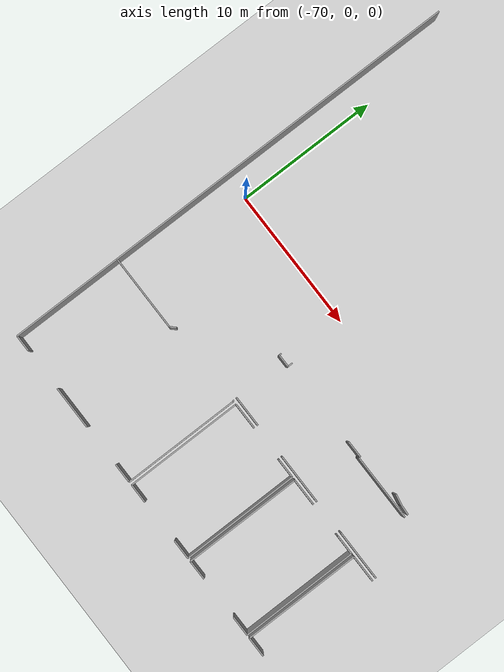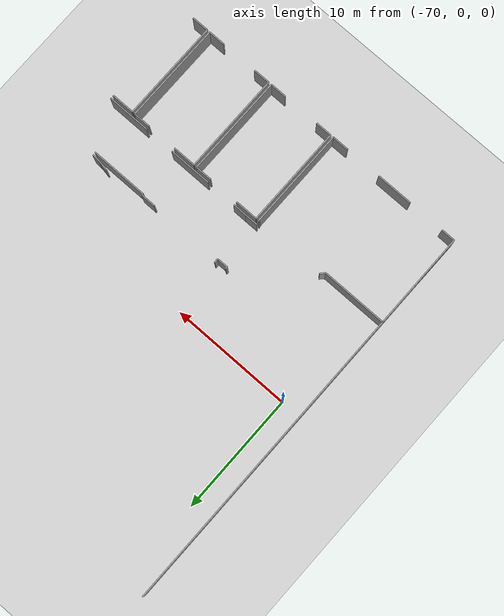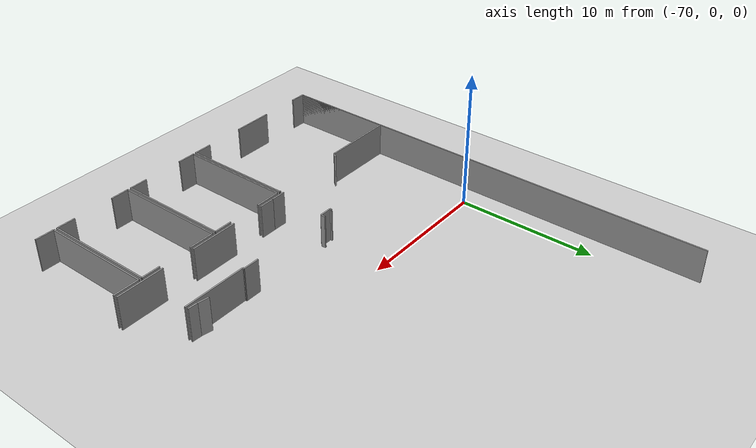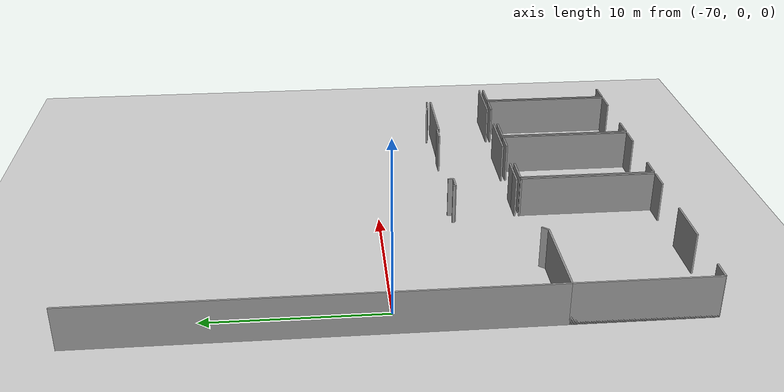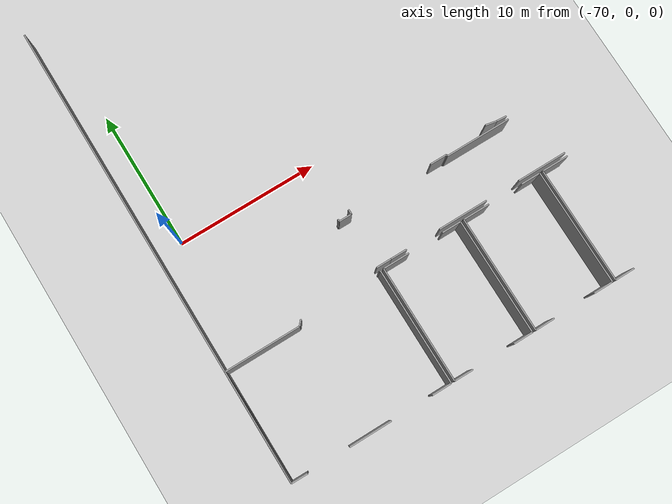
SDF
<sdf version="1.6">
 <world name="default">
  <model name="ground_plane">
   <static>1</static>
   <link name="link">
    <collision name="collision">
     <geometry><plane><normal>0 0 1</normal><size>100 100</size></plane></geometry>
     <surface><friction><ode><mu>100</mu><mu2>50</mu2></ode></friction></surface>
    </collision>
    <visual name="visual">
     <cast_shadows>0</cast_shadows>
     <geometry><plane><normal>0 0 1</normal><size>100 100</size></plane></geometry>
     <material>
      <script><uri>file://media/materials/scripts/gazebo.material</uri><name>Gazebo/Grey</name></script>
     </material>
    </visual>
   </link>
  </model>
  <model name="50041185">
   <static>1</static>
   <link name="Wall_0">
    <collision name="Wall_0_Collision">
     <geometry><box><size>7.89638912543 0.1 2.5</size></box></geometry>
     <pose>3.94819456272 0 1.25 0 0 0</pose>
    </collision>
    <visual name="Wall_0_Visual">
     <pose>3.94819456272 0 1.25 0 0 0</pose>
     <geometry><box><size>7.89638912543 0.1 2.5</size></box></geometry>
     <material>
      <script><uri>file://media/materials/scripts/gazebo.material</uri><name>Gazebo/Grey</name></script>
      <ambient>1 1 1 1</ambient>
     </material>
    </visual>
    <pose>0.0 -33.5813876638 0 0 0 1.57079632679</pose>
   </link>
   <link name="Wall_1">
    <collision name="Wall_1_Collision">
     <geometry><box><size>5.39817486242 0.1 2.5</size></box></geometry>
     <pose>2.69908743121 0 1.25 0 0 0</pose>
    </collision>
    <visual name="Wall_1_Visual">
     <pose>2.69908743121 0 1.25 0 0 0</pose>
     <geometry><box><size>5.39817486242 0.1 2.5</size></box></geometry>
     <material>
      <script><uri>file://media/materials/scripts/gazebo.material</uri><name>Gazebo/Grey</name></script>
      <ambient>1 1 1 1</ambient>
     </material>
    </visual>
    <pose>0.0 -25.6849985384 0 0 0 0.0</pose>
   </link>
   <link name="Wall_2">
    <collision name="Wall_2_Collision">
     <geometry><box><size>0.445846377394 0.1 2.5</size></box></geometry>
     <pose>0.222923188697 0 1.25 0 0 0</pose>
    </collision>
    <visual name="Wall_2_Visual">
     <pose>0.222923188697 0 1.25 0 0 0</pose>
     <geometry><box><size>0.445846377394 0.1 2.5</size></box></geometry>
     <material>
      <script><uri>file://media/materials/scripts/gazebo.material</uri><name>Gazebo/Grey</name></script>
      <ambient>1 1 1 1</ambient>
     </material>
    </visual>
    <pose>5.39817486242 -25.6849985384 0 0 0 0.848533692958</pose>
   </link>
   <link name="Wall_3">
    <collision name="Wall_3_Collision">
     <geometry><box><size>0.0874439176909 0.1 2.5</size></box></geometry>
     <pose>0.0437219588454 0 1.25 0 0 0</pose>
    </collision>
    <visual name="Wall_3_Visual">
     <pose>0.0437219588454 0 1.25 0 0 0</pose>
     <geometry><box><size>0.0874439176909 0.1 2.5</size></box></geometry>
     <material>
      <script><uri>file://media/materials/scripts/gazebo.material</uri><name>Gazebo/Grey</name></script>
      <ambient>1 1 1 1</ambient>
     </material>
    </visual>
    <pose>11.4509970894 -25.3504747137 0 0 0 0.0</pose>
   </link>
   <link name="Wall_4">
    <collision name="Wall_4_Collision">
     <geometry><box><size>8.24171634108 0.1 2.5</size></box></geometry>
     <pose>4.12085817054 0 1.25 0 0 0</pose>
    </collision>
    <visual name="Wall_4_Visual">
     <pose>4.12085817054 0 1.25 0 0 0</pose>
     <geometry><box><size>8.24171634108 0.1 2.5</size></box></geometry>
     <material>
      <script><uri>file://media/materials/scripts/gazebo.material</uri><name>Gazebo/Grey</name></script>
      <ambient>1 1 1 1</ambient>
     </material>
    </visual>
    <pose>11.5384410071 -25.3504747137 0 0 0 -1.57079632679</pose>
   </link>
   <link name="Wall_5">
    <collision name="Wall_5_Collision">
     <geometry><box><size>1.38995157539 0.1 2.5</size></box></geometry>
     <pose>0.694975787694 0 1.25 0 0 0</pose>
    </collision>
    <visual name="Wall_5_Visual">
     <pose>0.694975787694 0 1.25 0 0 0</pose>
     <geometry><box><size>1.38995157539 0.1 2.5</size></box></geometry>
     <material>
      <script><uri>file://media/materials/scripts/gazebo.material</uri><name>Gazebo/Grey</name></script>
      <ambient>1 1 1 1</ambient>
     </material>
    </visual>
    <pose>11.5384410071 -33.5921910548 0 0 0 3.14159265359</pose>
   </link>
   <link name="Wall_6">
    <collision name="Wall_6_Collision">
     <geometry><box><size>3.01897583853 0.1 2.5</size></box></geometry>
     <pose>1.50948791927 0 1.25 0 0 0</pose>
    </collision>
    <visual name="Wall_6_Visual">
     <pose>1.50948791927 0 1.25 0 0 0</pose>
     <geometry><box><size>3.01897583853 0.1 2.5</size></box></geometry>
     <material>
      <script><uri>file://media/materials/scripts/gazebo.material</uri><name>Gazebo/Grey</name></script>
      <ambient>1 1 1 1</ambient>
     </material>
    </visual>
    <pose>7.1771756123 -33.5921910548 0 0 0 3.14159265359</pose>
   </link>
   <link name="Wall_7">
    <collision name="Wall_7_Collision">
     <geometry><box><size>1.15734779669 0.1 2.5</size></box></geometry>
     <pose>0.578673898346 0 1.25 0 0 0</pose>
    </collision>
    <visual name="Wall_7_Visual">
     <pose>0.578673898346 0 1.25 0 0 0</pose>
     <geometry><box><size>1.15734779669 0.1 2.5</size></box></geometry>
     <material>
      <script><uri>file://media/materials/scripts/gazebo.material</uri><name>Gazebo/Grey</name></script>
      <ambient>1 1 1 1</ambient>
     </material>
    </visual>
    <pose>1.15729737287 -33.5921910548 0 0 0 3.13225790744</pose>
   </link>
   <link name="Wall_8">
    <collision name="Wall_8_Collision">
     <geometry><box><size>8.22290573088 0.1 2.5</size></box></geometry>
     <pose>4.11145286544 0 1.25 0 0 0</pose>
    </collision>
    <visual name="Wall_8_Visual">
     <pose>4.11145286544 0 1.25 0 0 0</pose>
     <geometry><box><size>8.22290573088 0.1 2.5</size></box></geometry>
     <material>
      <script><uri>file://media/materials/scripts/gazebo.material</uri><name>Gazebo/Grey</name></script>
      <ambient>1 1 1 1</ambient>
     </material>
    </visual>
    <pose>11.7827247423 -33.578591492 0 0 0 1.57079632679</pose>
   </link>
   <link name="Wall_9">
    <collision name="Wall_9_Collision">
     <geometry><box><size>1.87279960345 0.1 2.5</size></box></geometry>
     <pose>0.936399801726 0 1.25 0 0 0</pose>
    </collision>
    <visual name="Wall_9_Visual">
     <pose>0.936399801726 0 1.25 0 0 0</pose>
     <geometry><box><size>1.87279960345 0.1 2.5</size></box></geometry>
     <material>
      <script><uri>file://media/materials/scripts/gazebo.material</uri><name>Gazebo/Grey</name></script>
      <ambient>1 1 1 1</ambient>
     </material>
    </visual>
    <pose>11.7827247423 -25.3556857611 0 0 0 0.0</pose>
   </link>
   <link name="Wall_10">
    <collision name="Wall_10_Collision">
     <geometry><box><size>1.36859899084 0.1 2.5</size></box></geometry>
     <pose>0.684299495418 0 1.25 0 0 0</pose>
    </collision>
    <visual name="Wall_10_Visual">
     <pose>0.684299495418 0 1.25 0 0 0</pose>
     <geometry><box><size>1.36859899084 0.1 2.5</size></box></geometry>
     <material>
      <script><uri>file://media/materials/scripts/gazebo.material</uri><name>Gazebo/Grey</name></script>
      <ambient>1 1 1 1</ambient>
     </material>
    </visual>
    <pose>16.1635633396 -25.3556857611 0 0 0 0.0</pose>
   </link>
   <link name="Wall_11">
    <collision name="Wall_11_Collision">
     <geometry><box><size>8.22900646932 0.1 2.5</size></box></geometry>
     <pose>4.11450323466 0 1.25 0 0 0</pose>
    </collision>
    <visual name="Wall_11_Visual">
     <pose>4.11450323466 0 1.25 0 0 0</pose>
     <geometry><box><size>8.22900646932 0.1 2.5</size></box></geometry>
     <material>
      <script><uri>file://media/materials/scripts/gazebo.material</uri><name>Gazebo/Grey</name></script>
      <ambient>1 1 1 1</ambient>
     </material>
    </visual>
    <pose>17.5321623305 -25.3556857611 0 0 0 -1.57079632679</pose>
   </link>
   <link name="Wall_12">
    <collision name="Wall_12_Collision">
     <geometry><box><size>1.36859899084 0.1 2.5</size></box></geometry>
     <pose>0.684299495418 0 1.25 0 0 0</pose>
    </collision>
    <visual name="Wall_12_Visual">
     <pose>0.684299495418 0 1.25 0 0 0</pose>
     <geometry><box><size>1.36859899084 0.1 2.5</size></box></geometry>
     <material>
      <script><uri>file://media/materials/scripts/gazebo.material</uri><name>Gazebo/Grey</name></script>
      <ambient>1 1 1 1</ambient>
     </material>
    </visual>
    <pose>17.5321623305 -33.5846922305 0 0 0 3.14159265359</pose>
   </link>
   <link name="Wall_13">
    <collision name="Wall_13_Collision">
     <geometry><box><size>1.35043765464 0.1 2.5</size></box></geometry>
     <pose>0.675218827322 0 1.25 0 0 0</pose>
    </collision>
    <visual name="Wall_13_Visual">
     <pose>0.675218827322 0 1.25 0 0 0</pose>
     <geometry><box><size>1.35043765464 0.1 2.5</size></box></geometry>
     <material>
      <script><uri>file://media/materials/scripts/gazebo.material</uri><name>Gazebo/Grey</name></script>
      <ambient>1 1 1 1</ambient>
     </material>
    </visual>
    <pose>13.1331486165 -33.5846922305 0 0 0 3.13707503726</pose>
   </link>
   <link name="Wall_14">
    <collision name="Wall_14_Collision">
     <geometry><box><size>8.23116714752 0.1 2.5</size></box></geometry>
     <pose>4.11558357376 0 1.25 0 0 0</pose>
    </collision>
    <visual name="Wall_14_Visual">
     <pose>4.11558357376 0 1.25 0 0 0</pose>
     <geometry><box><size>8.23116714752 0.1 2.5</size></box></geometry>
     <material>
      <script><uri>file://media/materials/scripts/gazebo.material</uri><name>Gazebo/Grey</name></script>
      <ambient>1 1 1 1</ambient>
     </material>
    </visual>
    <pose>17.7816571131 -33.5846922305 0 0 0 1.57079632679</pose>
   </link>
   <link name="Wall_15">
    <collision name="Wall_15_Collision">
     <geometry><box><size>1.89732965594 0.1 2.5</size></box></geometry>
     <pose>0.948664827972 0 1.25 0 0 0</pose>
    </collision>
    <visual name="Wall_15_Visual">
     <pose>0.948664827972 0 1.25 0 0 0</pose>
     <geometry><box><size>1.89732965594 0.1 2.5</size></box></geometry>
     <material>
      <script><uri>file://media/materials/scripts/gazebo.material</uri><name>Gazebo/Grey</name></script>
      <ambient>1 1 1 1</ambient>
     </material>
    </visual>
    <pose>17.7816571131 -25.3535250829 0 0 0 0.0</pose>
   </link>
   <link name="Wall_16">
    <collision name="Wall_16_Collision">
     <geometry><box><size>1.39058706898 0.1 2.5</size></box></geometry>
     <pose>0.695293534488 0 1.25 0 0 0</pose>
    </collision>
    <visual name="Wall_16_Visual">
     <pose>0.695293534488 0 1.25 0 0 0</pose>
     <geometry><box><size>1.39058706898 0.1 2.5</size></box></geometry>
     <material>
      <script><uri>file://media/materials/scripts/gazebo.material</uri><name>Gazebo/Grey</name></script>
      <ambient>1 1 1 1</ambient>
     </material>
    </visual>
    <pose>22.1651647835 -25.3535250829 0 0 0 0.0</pose>
   </link>
   <link name="Wall_17">
    <collision name="Wall_17_Collision">
     <geometry><box><size>8.22163474371 0.1 2.5</size></box></geometry>
     <pose>4.11081737185 0 1.25 0 0 0</pose>
    </collision>
    <visual name="Wall_17_Visual">
     <pose>4.11081737185 0 1.25 0 0 0</pose>
     <geometry><box><size>8.22163474371 0.1 2.5</size></box></geometry>
     <material>
      <script><uri>file://media/materials/scripts/gazebo.material</uri><name>Gazebo/Grey</name></script>
      <ambient>1 1 1 1</ambient>
     </material>
    </visual>
    <pose>23.5557518525 -25.3535250829 0 0 0 -1.57079632679</pose>
   </link>
   <link name="Wall_18">
    <collision name="Wall_18_Collision">
     <geometry><box><size>1.38753669975 0.1 2.5</size></box></geometry>
     <pose>0.693768349877 0 1.25 0 0 0</pose>
    </collision>
    <visual name="Wall_18_Visual">
     <pose>0.693768349877 0 1.25 0 0 0</pose>
     <geometry><box><size>1.38753669975 0.1 2.5</size></box></geometry>
     <material>
      <script><uri>file://media/materials/scripts/gazebo.material</uri><name>Gazebo/Grey</name></script>
      <ambient>1 1 1 1</ambient>
     </material>
    </visual>
    <pose>23.5557518525 -33.5751598266 0 0 0 3.14159265359</pose>
   </link>
   <link name="Wall_19">
    <collision name="Wall_19_Collision">
     <geometry><box><size>1.38210432789 0.1 2.5</size></box></geometry>
     <pose>0.691052163944 0 1.25 0 0 0</pose>
    </collision>
    <visual name="Wall_19_Visual">
     <pose>0.691052163944 0 1.25 0 0 0</pose>
     <geometry><box><size>1.38210432789 0.1 2.5</size></box></geometry>
     <material>
      <script><uri>file://media/materials/scripts/gazebo.material</uri><name>Gazebo/Grey</name></script>
      <ambient>1 1 1 1</ambient>
     </material>
    </visual>
    <pose>19.163728568 -33.5751598266 0 0 0 -3.13469557701</pose>
   </link>
   <link name="Wall_20">
    <collision name="Wall_20_Collision">
     <geometry><box><size>8.23383622059 0.1 2.5</size></box></geometry>
     <pose>4.1169181103 0 1.25 0 0 0</pose>
    </collision>
    <visual name="Wall_20_Visual">
     <pose>4.1169181103 0 1.25 0 0 0</pose>
     <geometry><box><size>8.23383622059 0.1 2.5</size></box></geometry>
     <material>
      <script><uri>file://media/materials/scripts/gazebo.material</uri><name>Gazebo/Grey</name></script>
      <ambient>1 1 1 1</ambient>
     </material>
    </visual>
    <pose>23.7919012697 -33.5831670458 0 0 0 1.57079632679</pose>
   </link>
   <link name="Wall_21">
    <collision name="Wall_21_Collision">
     <geometry><box><size>1.89288120083 0.1 2.5</size></box></geometry>
     <pose>0.946440600414 0 1.25 0 0 0</pose>
    </collision>
    <visual name="Wall_21_Visual">
     <pose>0.946440600414 0 1.25 0 0 0</pose>
     <geometry><box><size>1.89288120083 0.1 2.5</size></box></geometry>
     <material>
      <script><uri>file://media/materials/scripts/gazebo.material</uri><name>Gazebo/Grey</name></script>
      <ambient>1 1 1 1</ambient>
     </material>
    </visual>
    <pose>23.7919012697 -25.3493308253 0 0 0 0.0</pose>
   </link>
   <link name="Wall_25">
    <collision name="Wall_25_Collision">
     <geometry><box><size>1.39758171156 0.1 2.5</size></box></geometry>
     <pose>0.698790855779 0 1.25 0 0 0</pose>
    </collision>
    <visual name="Wall_25_Visual">
     <pose>0.698790855779 0 1.25 0 0 0</pose>
     <geometry><box><size>1.39758171156 0.1 2.5</size></box></geometry>
     <material>
      <script><uri>file://media/materials/scripts/gazebo.material</uri><name>Gazebo/Grey</name></script>
      <ambient>1 1 1 1</ambient>
     </material>
    </visual>
    <pose>25.1894787682 -33.5797353805 0 0 0 -3.13913722018</pose>
   </link>
   <link name="Wall_112">
    <collision name="Wall_112_Collision">
     <geometry><box><size>0.695731518864 0.1 2.5</size></box></geometry>
     <pose>0.347865759432 0 1.25 0 0 0</pose>
    </collision>
    <visual name="Wall_112_Visual">
     <pose>0.347865759432 0 1.25 0 0 0</pose>
     <geometry><box><size>0.695731518864 0.1 2.5</size></box></geometry>
     <material>
      <script><uri>file://media/materials/scripts/gazebo.material</uri><name>Gazebo/Grey</name></script>
      <ambient>1 1 1 1</ambient>
     </material>
    </visual>
    <pose>23.8007981799 -21.0807203955 0 0 0 3.07834197287</pose>
   </link>
   <link name="Wall_113">
    <collision name="Wall_113_Collision">
     <geometry><box><size>0.794429423441 0.1 2.5</size></box></geometry>
     <pose>0.397214711721 0 1.25 0 0 0</pose>
    </collision>
    <visual name="Wall_113_Visual">
     <pose>0.397214711721 0 1.25 0 0 0</pose>
     <geometry><box><size>0.794429423441 0.1 2.5</size></box></geometry>
     <material>
      <script><uri>file://media/materials/scripts/gazebo.material</uri><name>Gazebo/Grey</name></script>
      <ambient>1 1 1 1</ambient>
     </material>
    </visual>
    <pose>23.1064578858 -21.0367442393 0 0 0 2.9490604108</pose>
   </link>
   <link name="Wall_230">
    <collision name="Wall_230_Collision">
     <geometry><box><size>1.076907434 0.1 2.5</size></box></geometry>
     <pose>0.538453717002 0 1.25 0 0 0</pose>
    </collision>
    <visual name="Wall_230_Visual">
     <pose>0.538453717002 0 1.25 0 0 0</pose>
     <geometry><box><size>1.076907434 0.1 2.5</size></box></geometry>
     <material>
      <script><uri>file://media/materials/scripts/gazebo.material</uri><name>Gazebo/Grey</name></script>
      <ambient>1 1 1 1</ambient>
     </material>
    </visual>
    <pose>12.517736626 -25.0736537068 0 0 0 3.14159265359</pose>
   </link>
   <link name="Wall_231">
    <collision name="Wall_231_Collision">
     <geometry><box><size>0.164974135411 0.1 2.5</size></box></geometry>
     <pose>0.0824870677055 0 1.25 0 0 0</pose>
    </collision>
    <visual name="Wall_231_Visual">
     <pose>0.0824870677055 0 1.25 0 0 0</pose>
     <geometry><box><size>0.164974135411 0.1 2.5</size></box></geometry>
     <material>
      <script><uri>file://media/materials/scripts/gazebo.material</uri><name>Gazebo/Grey</name></script>
      <ambient>1 1 1 1</ambient>
     </material>
    </visual>
    <pose>11.0044992946 -21.1634616607 0 0 0 -1.57079632679</pose>
   </link>
   <link name="Wall_232">
    <collision name="Wall_232_Collision">
     <geometry><box><size>0.899986019141 0.1 2.5</size></box></geometry>
     <pose>0.449993009571 0 1.25 0 0 0</pose>
    </collision>
    <visual name="Wall_232_Visual">
     <pose>0.449993009571 0 1.25 0 0 0</pose>
     <geometry><box><size>0.899986019141 0.1 2.5</size></box></geometry>
     <material>
      <script><uri>file://media/materials/scripts/gazebo.material</uri><name>Gazebo/Grey</name></script>
      <ambient>1 1 1 1</ambient>
     </material>
    </visual>
    <pose>11.0044992946 -21.3284357961 0 0 0 0.0</pose>
   </link>
   <link name="Wall_233">
    <collision name="Wall_233_Collision">
     <geometry><box><size>0.345327215648 0.1 2.5</size></box></geometry>
     <pose>0.172663607824 0 1.25 0 0 0</pose>
    </collision>
    <visual name="Wall_233_Visual">
     <pose>0.172663607824 0 1.25 0 0 0</pose>
     <geometry><box><size>0.345327215648 0.1 2.5</size></box></geometry>
     <material>
      <script><uri>file://media/materials/scripts/gazebo.material</uri><name>Gazebo/Grey</name></script>
      <ambient>1 1 1 1</ambient>
     </material>
    </visual>
    <pose>11.9044853137 -21.3284357961 0 0 0 1.57079632679</pose>
   </link>
   <link name="Wall_235">
    <collision name="Wall_235_Collision">
     <geometry><box><size>1.1904065888 0.1 2.5</size></box></geometry>
     <pose>0.595203294399 0 1.25 0 0 0</pose>
    </collision>
    <visual name="Wall_235_Visual">
     <pose>0.595203294399 0 1.25 0 0 0</pose>
     <geometry><box><size>1.1904065888 0.1 2.5</size></box></geometry>
     <material>
      <script><uri>file://media/materials/scripts/gazebo.material</uri><name>Gazebo/Grey</name></script>
      <ambient>1 1 1 1</ambient>
     </material>
    </visual>
    <pose>17.9358278575 -21.2151908387 0 0 0 0.0</pose>
   </link>
   <link name="Wall_236">
    <collision name="Wall_236_Collision">
     <geometry><box><size>0.109050699678 0.1 2.5</size></box></geometry>
     <pose>0.0545253498392 0 1.25 0 0 0</pose>
    </collision>
    <visual name="Wall_236_Visual">
     <pose>0.0545253498392 0 1.25 0 0 0</pose>
     <geometry><box><size>0.109050699678 0.1 2.5</size></box></geometry>
     <material>
      <script><uri>file://media/materials/scripts/gazebo.material</uri><name>Gazebo/Grey</name></script>
      <ambient>1 1 1 1</ambient>
     </material>
    </visual>
    <pose>19.1262344463 -21.2151908387 0 0 0 -1.57079632679</pose>
   </link>
   <link name="Wall_237">
    <collision name="Wall_237_Collision">
     <geometry><box><size>4.68778200028 0.1 2.5</size></box></geometry>
     <pose>2.34389100014 0 1.25 0 0 0</pose>
    </collision>
    <visual name="Wall_237_Visual">
     <pose>2.34389100014 0 1.25 0 0 0</pose>
     <geometry><box><size>4.68778200028 0.1 2.5</size></box></geometry>
     <material>
      <script><uri>file://media/materials/scripts/gazebo.material</uri><name>Gazebo/Grey</name></script>
      <ambient>1 1 1 1</ambient>
     </material>
    </visual>
    <pose>19.1262344463 -21.3242415384 0 0 0 0.0</pose>
   </link>
   <link name="Wall_250">
    <collision name="Wall_250_Collision">
     <geometry><box><size>3.53499663188 0.1 2.5</size></box></geometry>
     <pose>1.76749831594 0 1.25 0 0 0</pose>
    </collision>
    <visual name="Wall_250_Visual">
     <pose>1.76749831594 0 1.25 0 0 0</pose>
     <geometry><box><size>3.53499663188 0.1 2.5</size></box></geometry>
     <material>
      <script><uri>file://media/materials/scripts/gazebo.material</uri><name>Gazebo/Grey</name></script>
      <ambient>1 1 1 1</ambient>
     </material>
    </visual>
    <pose>25.6738519808 -25.0772124709 0 0 0 3.14159265359</pose>
   </link>
   <link name="Wall_251">
    <collision name="Wall_251_Collision">
     <geometry><box><size>3.53677601393 0.1 2.5</size></box></geometry>
     <pose>1.76838800697 0 1.25 0 0 0</pose>
    </collision>
    <visual name="Wall_251_Visual">
     <pose>1.76838800697 0 1.25 0 0 0</pose>
     <geometry><box><size>3.53677601393 0.1 2.5</size></box></geometry>
     <material>
      <script><uri>file://media/materials/scripts/gazebo.material</uri><name>Gazebo/Grey</name></script>
      <ambient>1 1 1 1</ambient>
     </material>
    </visual>
    <pose>19.6802577562 -25.0772124709 0 0 0 3.14159265359</pose>
   </link>
   <link name="Wall_252">
    <collision name="Wall_252_Collision">
     <geometry><box><size>1.14885082011 0.1 2.5</size></box></geometry>
     <pose>0.574425410054 0 1.25 0 0 0</pose>
    </collision>
    <visual name="Wall_252_Visual">
     <pose>0.574425410054 0 1.25 0 0 0</pose>
     <geometry><box><size>1.14885082011 0.1 2.5</size></box></geometry>
     <material>
      <script><uri>file://media/materials/scripts/gazebo.material</uri><name>Gazebo/Grey</name></script>
      <ambient>1 1 1 1</ambient>
     </material>
    </visual>
    <pose>13.6665819342 -25.0772124709 0 0 0 3.1384949757</pose>
   </link>
   <link name="Wall_428">
    <collision name="Wall_428_Collision">
     <geometry><box><size>33.5921910548 0.1 2.5</size></box></geometry>
     <pose>16.7960955274 0 1.25 0 0 0</pose>
    </collision>
    <visual name="Wall_428_Visual">
     <pose>16.7960955274 0 1.25 0 0 0</pose>
     <geometry><box><size>33.5921910548 0.1 2.5</size></box></geometry>
     <material>
      <script><uri>file://media/materials/scripts/gazebo.material</uri><name>Gazebo/Grey</name></script>
      <ambient>1 1 1 1</ambient>
     </material>
    </visual>
    <pose>0.0 -33.5921910548 0 0 0 1.57079632679</pose>
   </link>
   <pose>-71.7 16.7921910548 0 0 0 0</pose>
  </model>
 </world>
</sdf>
